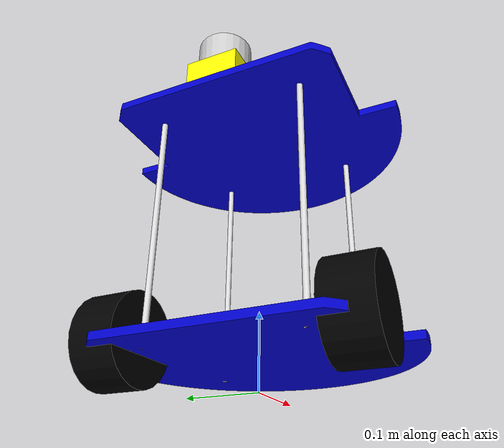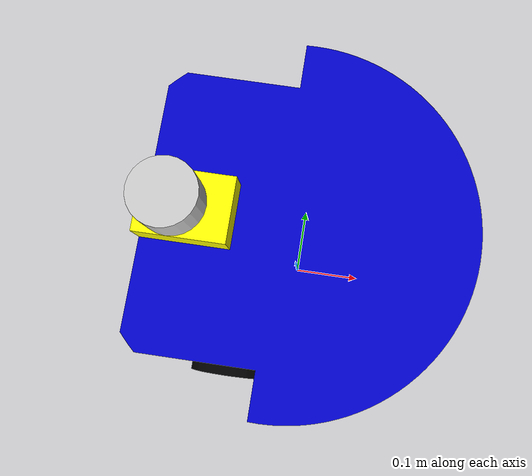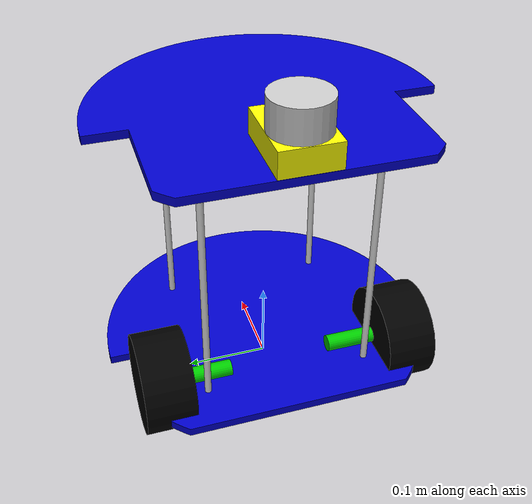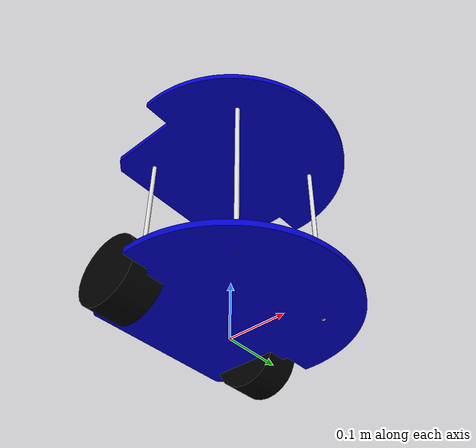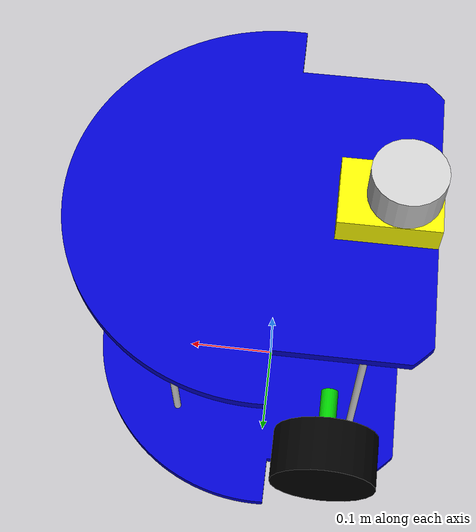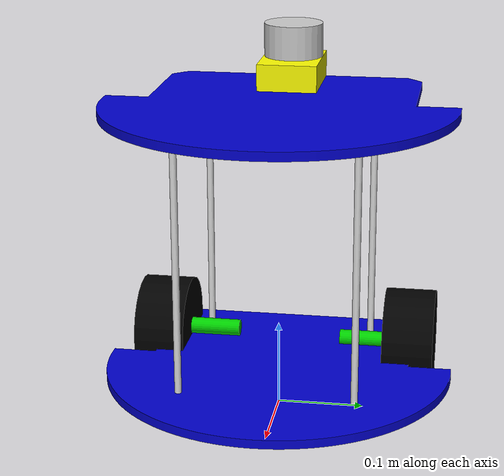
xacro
<?xml version="1.0"?>
<robot name="myrobot" xmlns:xacro="http://www.ros.org/wiki/xacro">
  <material name="white">
    <color rgba="0.87 0.90 0.87 1.0"/>
  </material>
  <material name="black">
    <color rgba="0.0 0.0 0.0 1.0"/>
  </material>
  <material name="green">
    <color rgba="0.22 0.32 0.14 1.0"/>
  </material>
  <material name="Green">
    <color rgba="0.0 0.8 0.0 1.0"/>
  </material>
  <material name="OffWhite">
    <color rgba="0.8 0.8 0.8 1"/>
  </material>
  <material name="yellow">
     <color rgba="1 1 0 1"/>
  </material>

  <link name="base_link">
     <visual>
       <geometry>
          <mesh filename="package://myrobot/meshes/ROS.stl" scale="0.001016 0.001016 0.001016"/>
       </geometry>
       <material name="blue">
         <color rgba="0 0 0.8 1" />
       </material>
       <origin rpy="0 0 -1.57075" xyz="0 0 0.04 " />
     </visual>
  </link>
<!--This is added to the last 4 supports-->
  <link name="right_wheel">
     <visual>
       <geometry>
          <cylinder length="0.06" radius="0.06" />
       </geometry>
       <origin xyz="0 0 0.04 " />
       <material name="black"/>
     </visual>
  </link>

   <joint name="right_wheel_joint" type="continuous">
      <parent link="base_link" />
      <child  link="right_wheel" />
       <axis xyz="0 0 1" />
      <origin rpy="0 1.57075 1.57075" xyz="-0.075 -0.19 0.06" />
   </joint>

   <link name="right_wheel_axis">
      <visual>
        <geometry>
           <cylinder length="0.06" radius="0.01" />
        </geometry>
        <origin xyz="0 0 0.04 " />
        <material name="Green" />
      </visual>
   </link>

   <joint name="right_wheel_axis_joint" type="fixed">
      <parent link="base_link" />
      <child  link="right_wheel_axis" />
      <origin rpy="0 1.57075 1.57075" xyz="-0.075 -0.13 0.06" />
   </joint>

  <link name="left_wheel">
     <visual>
       <geometry>
          <cylinder length="0.06" radius="0.06" />
       </geometry>
        <origin xyz="0 0 0.04 " />
       <material name="black" />
     </visual>
  </link>

  <joint name="left_wheel_joint" type="continuous">
      <parent link="base_link" />
      <child  link="left_wheel" />
      <axis xyz="0 0 1" />
      <origin rpy="0 -1.57075 1.57075" xyz="-0.075 0.19 0.06" />
  </joint>

  <link name="left_wheel_axis">
      <visual>
        <geometry>
           <cylinder length="0.06" radius="0.01" />
        </geometry>
        <origin xyz="0 0 0.035" />
        <material name="Green" />
      </visual>
  </link>

  <joint name="left_wheel_axis_joint" type="fixed">
      <parent link="base_link" />
      <child  link="left_wheel_axis" />
      <origin rpy="0 -1.57075 1.57075" xyz="-0.075 0.13 0.055" />
  </joint>
<!--End-->

<!--This is added to the last 4 supports-->

  <link name="left_brace_front">
    <visual>
       <geometry>
          <cylinder length="0.32" radius="0.004" />
       </geometry>
       <material name="green">
          <color rgba=".86 .86 .86 1" />
       </material>
    </visual>
  </link>

  <joint name="left_brace_front_joint" type="fixed">
     <parent link="base_link" />
     <child  link="left_brace_front"/>
     <origin xyz="0.1 0.1 0.2" />
  </joint>

  <link name="left_brace_back">
    <visual>
       <geometry>
          <cylinder length="0.32" radius="0.004" />
       </geometry>
       <material name="green">
          <color rgba="0.86 0.86 0.86 1" />
       </material>
    </visual>
  </link>

  <joint name="left_brace_back_joint" type="fixed">
     <parent link="base_link" />
     <child  link="left_brace_back"/>
     <origin xyz="0.1 -0.1 0.2" />
  </joint>

  <link name="right_brace_front">
    <visual>
       <geometry>
          <cylinder length="0.32" radius="0.004" />
       </geometry>
       <material name="green">
          <color rgba=".86 .86 .86 1" />
       </material>
    </visual>
  </link>

  <joint name="right_brace_front_joint" type="fixed">
     <parent link="base_link" />
     <child  link="right_brace_front"/>
     <origin xyz="-0.1 0.1 0.2" />
  </joint>

  <link name="right_brace_back">
    <visual>
       <geometry>
          <cylinder length="0.32" radius="0.004" />
       </geometry>
       <material name="green">
          <color rgba=".86 .86 .86 1" />
       </material>
    </visual>
  </link>

  <joint name="right_brace_back_joint" type="fixed">
     <parent link="base_link" />
     <child  link="right_brace_back"/>
     <origin xyz="-0.1 -0.1 0.2" />
  </joint>
<!--End-->

<!--This is the rplidar-->
    <link name="rplidar">
       <visual>
         <geometry>
            <cylinder length="0.046" radius="0.035"/>
         </geometry>
         <origin xyz="0 0 0.04" />
         <material name="OffWhite" />
       </visual>
    </link>

    <joint name="rplidar_joint" type="fixed">
       <parent link="rplidar_bottom" />
       <child  link="rplidar"/>
       <origin rpy="0 0 1.57075" xyz="0 0.012 0.033" />
    </joint>

    <link name="rplidar_bottom">
      <visual>
         <geometry>
            <box size="0.07 0.096 0.033" />
         </geometry>
         <origin xyz="0 0 0.04" />
         <material name="yellow" />
      </visual>
    </link>

    <joint name="rplidar_bottom_joint" type="fixed">
       <parent link="base_link" />
       <child  link="rplidar_bottom" />
       <origin rpy="0 0 1.57075" xyz="-0.104 0 0.34" />
    </joint>
<!--End-->

</robot>
